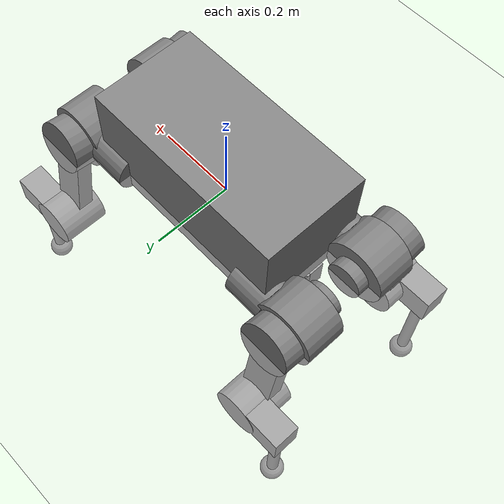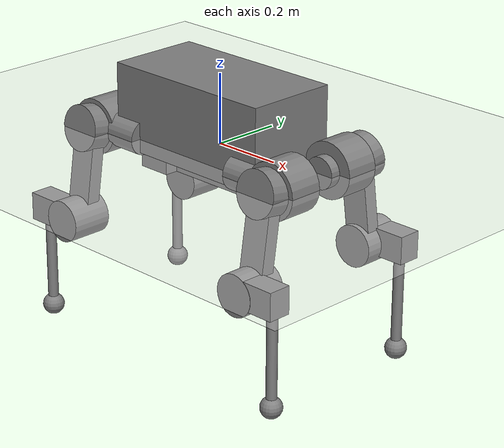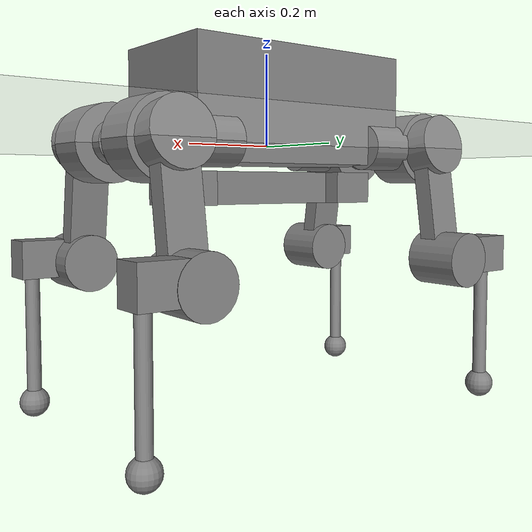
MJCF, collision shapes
<mujoco model="anymal_b">
  <compiler angle="radian" meshdir="assets" texturedir="assets" autolimits="true"/>

  <option cone="pyramidal" impratio="100" timestep="0.005"/>

  <default>
    <geom solref="-1000 -80"/>
    <default class="anymal_b">
      <mesh scale="0.001 0.001 0.001"/>
      <joint type="hinge" damping="1" frictionloss="0.1" range="-3.14 3.14"/>
      <geom mass="0"/>
      <default class="visual">
        <geom type="mesh" contype="0" conaffinity="0" group="2"/>
        <default class="visual_zflip">
          <geom quat="0 0 0 1"/>
        </default>
      </default>
      <default class="collision">
        <geom group="3"/>
        <default class="haa_actuator">
          <geom type="cylinder" size="0.05 0.05" euler="0 1.57079632679 0"/>
        </default>
        <default class="belly_plate_bump">
          <geom type="box" size="0.05 0.05 0.035"/>
        </default>
        <default class="mount">
          <geom type="box" size="0.01 0.135 0.045"/>
        </default>
        <default class="protector">
          <geom type="cylinder" size="0.08 0.05"/>
        </default>
        <default class="heatfins">
          <geom type="cylinder" size="0.045 0.015"/>
        </default>
        <default class="thigh_with_fins">
          <geom type="box" size="0.04 0.02 0.125"/>
        </default>
        <default class="kfe_actuator">
          <geom type="cylinder" size="0.06 0.06"/>
        </default>
        <default class="upper_protector">
          <geom type="cylinder" size="0.066 0.06"/>
        </default>
        <default class="shank">
          <geom type="box" size="0.04 0.034 0.065" euler="0 1.57079632679 0"/>
        </default>
        <default class="adapter">
          <geom type="cylinder" size="0.015 0.14" pos="0 0 -0.14"/>
        </default>
        <default class="foot">
          <geom type="sphere" size="0.031" pos="0 0 0.02325" priority="1" solimp="0.015 1 0.031" condim="6"
            friction="0.8 0.02 0.01"/>
        </default>
      </default>
    </default>
    <motor ctrllimited="true" ctrlrange="-40.0 40.0"/>
  </default>

  <asset>
    <texture type="skybox" builtin="gradient" rgb1=".3 .5 .7" rgb2="0 0 0" width="32" height="512"/>

    <texture name="texplane" type="2d" builtin="checker" rgb1="0.5 0.6 0.7" rgb2="0.2 0.3 0.4" width="100" height="100"/>
    <material name="MatPlane" reflectance="0.5" texture="texplane" texrepeat="1 1" texuniform="true"></material>

    <texture name="grid" type="2d" builtin="checker" rgb1="0.5 0.6 0.7" rgb2="0.2 0.3 0.4" width="512" height="512"/>
    <material name="grid" reflectance="0.5" texture="grid" texrepeat="1 1" texuniform="true"></material>

    <material name="light_gray" rgba="0.8 0.8 0.8 1"/>
    <material name="dark_gray" rgba="0.64 0.64 0.64 1"/>
    <material name="alu_eloxiert" rgba="0.1139 0.1139 0.1139 1"/>
    <material name="any_blau" rgba="0.2399 0.3499 0.5899 1"/>
    <texture name="base_uv_texture" type="2d" file="base_uv_texture.png"/>
    <material name="carbon_fibre_logo" texture="base_uv_texture" specular="1" shininess="1"/>
    <material name="rot_emcy" rgba="0.2611 0.09645 0.0735 1"/>
    <material name="yellow_emcy" rgba="0.5987 0.4607 0.2442 1"/>
    <material name="copper" rgba="0.8 0.4673 0.284 1"/>
    <material name="foam_dark" rgba="0.1 0.1 0.1 1"/>
    <texture name="carbon_uv_texture" type="2d" file="carbon_uv_texture.png"/>
    <material name="carbon_fibre" texture="carbon_uv_texture" specular="1" shininess="1"/>

    <mesh class="anymal_b" file="anymal_base_0.obj"/>
    <mesh class="anymal_b" file="anymal_base_1.obj"/>
    <mesh class="anymal_b" file="anymal_base_2.obj"/>
    <mesh class="anymal_b" file="anymal_base_3.obj"/>
    <mesh class="anymal_b" file="anymal_base_4.obj"/>
    <mesh class="anymal_b" file="anymal_base_5.obj"/>
    <mesh class="anymal_b" file="anymal_base_6.obj"/>
    <mesh class="anymal_b" file="anymal_base_7.obj"/>
    <mesh class="anymal_b" file="anymal_hip_l_0.obj"/>
    <mesh class="anymal_b" file="anymal_hip_l_1.obj"/>
    <mesh class="anymal_b" file="anymal_hip_l_2.obj"/>
    <mesh class="anymal_b" file="anymal_hip_l_3.obj"/>
    <mesh class="anymal_b" file="anymal_hip_l_4.obj"/>
    <mesh class="anymal_b" file="anymal_hip_l_5.obj"/>
    <mesh class="anymal_b" file="anymal_hip_l_6.obj"/>
    <mesh class="anymal_b" file="anymal_thigh_l_0.obj"/>
    <mesh class="anymal_b" file="anymal_thigh_l_1.obj"/>
    <mesh class="anymal_b" file="anymal_thigh_l_2.obj"/>
    <mesh class="anymal_b" file="anymal_thigh_l_3.obj"/>
    <mesh class="anymal_b" file="anymal_thigh_l_4.obj"/>
    <mesh class="anymal_b" file="anymal_thigh_l_5.obj"/>
    <mesh class="anymal_b" file="anymal_shank_l_0.obj"/>
    <mesh class="anymal_b" file="anymal_shank_l_1.obj"/>
    <mesh class="anymal_b" file="anymal_shank_l_2.obj"/>
    <mesh class="anymal_b" file="anymal_shank_l_3.obj"/>
    <mesh class="anymal_b" file="anymal_hip_r_0.obj"/>
    <mesh class="anymal_b" file="anymal_hip_r_1.obj"/>
    <mesh class="anymal_b" file="anymal_hip_r_2.obj"/>
    <mesh class="anymal_b" file="anymal_hip_r_3.obj"/>
    <mesh class="anymal_b" file="anymal_hip_r_4.obj"/>
    <mesh class="anymal_b" file="anymal_hip_r_5.obj"/>
    <mesh class="anymal_b" file="anymal_hip_r_6.obj"/>
    <mesh class="anymal_b" file="anymal_thigh_r_0.obj"/>
    <mesh class="anymal_b" file="anymal_thigh_r_1.obj"/>
    <mesh class="anymal_b" file="anymal_thigh_r_2.obj"/>
    <mesh class="anymal_b" file="anymal_thigh_r_3.obj"/>
    <mesh class="anymal_b" file="anymal_thigh_r_4.obj"/>
    <mesh class="anymal_b" file="anymal_thigh_r_5.obj"/>
    <mesh class="anymal_b" file="anymal_shank_r_0.obj"/>
    <mesh class="anymal_b" file="anymal_shank_r_1.obj"/>
    <mesh class="anymal_b" file="anymal_shank_r_2.obj"/>
    <mesh class="anymal_b" file="anymal_shank_r_3.obj"/>
    <mesh class="anymal_b" file="anymal_foot_0.obj"/>
    <mesh class="anymal_b" file="anymal_foot_1.obj"/>
    <mesh class="anymal_b" file="anymal_foot_2.obj"/>
    <mesh class="anymal_b" file="anymal_foot_3.obj"/>
  </asset>

  <worldbody>
    <geom name="floor" size="0 0 .125" type="plane" material="grid" condim="3" rgba="0.9 0.9 0.9 1"/>

    <light cutoff="100" diffuse="1 1 1" dir="-0 0 -1.3" directional="true" exponent="1" pos="0 0 1.3" specular=".1 .1 .1" castshadow="false"/>
    <light name="spotlight" mode="targetbodycom" target="trunk" pos="0 0 15"/>

    <body name="trunk" pos="0 0 0" childclass="anymal_b">
      <camera name="track" mode="trackcom" pos="0 -2 0" xyaxes="1 0 0 0 0 1"/>
      <freejoint/>

      <inertial mass="19.2035" pos="0.0025 0 0.0502071" quat="0.5 0.5 0.5 0.5" diaginertia="0.639559 0.624031 0.217374"/>

      <geom class="visual" mesh="anymal_base_0" material="yellow_emcy"/>
      <geom class="visual" mesh="anymal_base_1" material="rot_emcy"/>
      <geom class="visual" mesh="anymal_base_2" material="dark_gray"/>
      <geom class="visual" mesh="anymal_base_3" material="any_blau"/>
      <geom class="visual" mesh="anymal_base_4" material="alu_eloxiert"/>
      <geom class="visual" mesh="anymal_base_5" material="carbon_fibre_logo"/>
      <geom class="visual" mesh="anymal_base_6" material="foam_dark"/>
      <geom class="visual" mesh="anymal_base_7" material="light_gray"/>
      <geom class="collision" size="0.2655 0.135 0.12" pos="0 0 0.08" type="box" name="trunk_1"/>
      <geom class="haa_actuator" pos="0.227 0.116 0"/>
      <geom class="haa_actuator" pos="0.227 -0.116 0"/>
      <geom class="haa_actuator" pos="-0.227 0.116 0"/>
      <geom class="haa_actuator" pos="-0.227 -0.116 0"/>
      <geom class="belly_plate_bump" pos="0.2155 0 -0.09" name="trunk_2"/>
      <geom class="belly_plate_bump" pos="-0.2155 0 -0.09" name="trunk_3"/>
      <geom class="collision" size="0.2655 0.01 0.035" pos="0 0 -0.09" type="box" name="trunk_4"/>

      <body name="LF_HIP" pos="0.277 0.116 0">
        <inertial mass="1.42462" pos="0.0645163 -0.0037871 -0.000152184" quat="0.996866 0.0379822 0.0252009 -0.0646548"
          diaginertia="0.00243341 0.00230249 0.00197758"/>
        <joint name="LF_HAA" axis="1 0 0"/>
        <geom class="visual" mesh="anymal_hip_l_0" material="light_gray"/>
        <geom class="visual" mesh="anymal_hip_l_1" material="copper"/>
        <geom class="visual" mesh="anymal_hip_l_2" material="foam_dark"/>
        <geom class="visual" mesh="anymal_hip_l_3" material="alu_eloxiert"/>
        <geom class="visual" mesh="anymal_hip_l_4" material="any_blau"/>
        <geom class="visual" mesh="anymal_hip_l_5" material="dark_gray"/>
        <geom class="visual" mesh="anymal_hip_l_6" material="light_gray"/>
        <geom class="protector" pos="0.0635 -0.009 0" quat="1 1 0 0"/>
        <geom class="heatfins" pos="0.0635 -0.074 0" quat="1 1 0 0"/>
        <body name="LF_THIGH" pos="0.0635 0.041 0">
          <inertial mass="1.63498" pos="-0.00389797 0.0542266 -0.214583" quat="0.74395 -0.0633414 0.0362707 0.664237"
            diaginertia="0.0122697 0.0120427 0.00228302"/>
          <joint name="LF_HFE" axis="0 1 0"/>
          <geom class="visual" material="any_blau" mesh="anymal_thigh_l_0"/>
          <geom class="visual" material="dark_gray" mesh="anymal_thigh_l_1"/>
          <geom class="visual" material="copper" mesh="anymal_thigh_l_2"/>
          <geom class="visual" material="alu_eloxiert" mesh="anymal_thigh_l_3"/>
          <geom class="visual" material="foam_dark" mesh="anymal_thigh_l_4"/>
          <geom class="visual" material="light_gray" mesh="anymal_thigh_l_5"/>
          <geom class="thigh_with_fins" pos="0 0.035 -0.125" quat="0.997373 0.0724365 0 0" name="LF_thigh"/>
          <geom class="kfe_actuator" pos="0 0.069 -0.25" quat="1 1 0 0" name="LF_kfe_act"/>
          <geom class="upper_protector" pos="0 -0.005 0" quat="0.654029 0.75647 0 0"/>
          <body name="LF_SHANK" pos="0 0.109 -0.25">
            <inertial mass="0.472163" pos="0.0696396 -0.0132494 -0.150905"
              quat="0.677954 -0.0950614 -0.0578104 0.726636" diaginertia="0.0116034 0.0110666 0.000723761"/>
            <joint name="LF_KFE" axis="0 1 0"/>
            <geom class="visual" material="foam_dark" mesh="anymal_shank_l_0"/>
            <geom class="visual" material="dark_gray" mesh="anymal_shank_l_1"/>
            <geom class="visual" material="light_gray" mesh="anymal_shank_l_2"/>
            <geom class="visual" material="light_gray" mesh="anymal_shank_l_3"/>
            <geom class="shank" pos="0.065 -0.015 0.01" quat="1 0 1 0"/>
            <geom class="visual" material="carbon_fibre" mesh="anymal_foot_0" pos="0.1 -0.02 0.032"/>
            <geom class="visual" material="foam_dark" mesh="anymal_foot_1" pos="0.1 -0.02 0.032"/>
            <geom class="visual" material="dark_gray" mesh="anymal_foot_2" pos="0.1 -0.02 0.032"/>
            <geom class="visual" material="light_gray" mesh="anymal_foot_3" pos="0.1 -0.02 0.032"/>
            <geom class="adapter" pos="0.1 -0.02 -0.160625" name="LF_calf"/>
            <geom class="foot" pos="0.1 -0.02 -0.298" name="LF_foot"/>
          </body>
        </body>
      </body>
      <body name="RF_HIP" pos="0.277 -0.116 0">
        <inertial mass="1.42462" pos="0.0645163 0.0037871 -0.000152184" quat="0.996866 -0.0379822 0.0252009 0.0646548"
          diaginertia="0.00243341 0.00230249 0.00197758"/>
        <joint name="RF_HAA" axis="1 0 0"/>
        <geom class="visual" material="light_gray" mesh="anymal_hip_r_0"/>
        <geom class="visual" material="copper" mesh="anymal_hip_r_1"/>
        <geom class="visual" material="foam_dark" mesh="anymal_hip_r_2"/>
        <geom class="visual" material="alu_eloxiert" mesh="anymal_hip_r_3"/>
        <geom class="visual" material="any_blau" mesh="anymal_hip_r_4"/>
        <geom class="visual" material="dark_gray" mesh="anymal_hip_r_5"/>
        <geom class="visual" material="light_gray" mesh="anymal_hip_r_6"/>
        <geom class="protector" pos="0.0635 0.009 0" quat="1 1 0 0"/>
        <geom class="heatfins" pos="0.0635 0.074 0" quat="1 1 0 0"/>
        <body name="RF_THIGH" pos="0.0635 -0.041 0">
          <inertial mass="1.63498" pos="-0.00389797 -0.0542266 -0.214583" quat="0.664237 0.0362707 -0.0633414 0.74395"
            diaginertia="0.0122697 0.0120427 0.00228302"/>
          <joint name="RF_HFE" axis="0 -1 0"/>
          <geom class="visual" material="any_blau" mesh="anymal_thigh_r_0"/>
          <geom class="visual" material="dark_gray" mesh="anymal_thigh_r_1"/>
          <geom class="visual" material="copper" mesh="anymal_thigh_r_2"/>
          <geom class="visual" material="alu_eloxiert" mesh="anymal_thigh_r_3"/>
          <geom class="visual" material="foam_dark" mesh="anymal_thigh_r_4"/>
          <geom class="visual" material="light_gray" mesh="anymal_thigh_r_5"/>
          <geom class="thigh_with_fins" pos="0 -0.035 -0.125" quat="0.997373 -0.0724365 0 0" name="RF_thigh"/>
          <geom class="kfe_actuator" pos="0 -0.069 -0.25" quat="1 1 0 0" name="RF_kfe_act"/>
          <geom class="upper_protector" pos="0 0.005 0" quat="0.654029 -0.75647 0 0"/>
          <body name="RF_SHANK" pos="0 -0.109 -0.25">
            <inertial mass="0.472163" pos="0.0696396 0.0132494 -0.150905" quat="0.726636 -0.0578104 -0.0950614 0.677954"
              diaginertia="0.0116034 0.0110666 0.000723761"/>
            <joint name="RF_KFE" axis="0 -1 0"/>
            <geom class="visual" material="foam_dark" mesh="anymal_shank_r_0"/>
            <geom class="visual" material="dark_gray" mesh="anymal_shank_r_1"/>
            <geom class="visual" material="light_gray" mesh="anymal_shank_r_2"/>
            <geom class="visual" material="light_gray" mesh="anymal_shank_r_3"/>
            <geom class="shank" pos="0.065 0.015 0.01" quat="1 0 1 0"/>
            <geom class="visual" material="carbon_fibre" mesh="anymal_foot_0" pos="0.1 0.02 0.032"/>
            <geom class="visual" material="foam_dark" mesh="anymal_foot_1" pos="0.1 0.02 0.032"/>
            <geom class="visual" material="dark_gray" mesh="anymal_foot_2" pos="0.1 0.02 0.032"/>
            <geom class="visual" material="light_gray" mesh="anymal_foot_3" pos="0.1 0.02 0.032"/>
            <geom class="adapter" pos="0.1 0.02 -0.160625" name="RF_calf"/>
            <geom class="foot" pos="0.1 0.02 -0.298" name="RF_foot"/>
          </body>
        </body>
      </body>
      <body name="LH_HIP" pos="-0.277 0.116 0">
        <inertial mass="1.42462" pos="-0.0645163 -0.0037871 -0.000152184" quat="0.996866 0.0379822 -0.0252009 0.0646548"
          diaginertia="0.00243341 0.00230249 0.00197758"/>
        <joint name="LH_HAA" axis="-1 0 0"/>
        <geom class="visual_zflip" material="light_gray" mesh="anymal_hip_r_0"/>
        <geom class="visual_zflip" material="copper" mesh="anymal_hip_r_1"/>
        <geom class="visual_zflip" material="foam_dark" mesh="anymal_hip_r_2"/>
        <geom class="visual_zflip" material="alu_eloxiert" mesh="anymal_hip_r_3"/>
        <geom class="visual_zflip" material="any_blau" mesh="anymal_hip_r_4"/>
        <geom class="visual_zflip" material="dark_gray" mesh="anymal_hip_r_5"/>
        <geom class="visual_zflip" material="light_gray" mesh="anymal_hip_r_6"/>
        <geom class="protector" pos="-0.0635 -0.009 0" quat="1 -1 0 0"/>
        <geom class="heatfins" pos="-0.0635 -0.074 0" quat="1 -1 0 0"/>
        <body name="LH_THIGH" pos="-0.0635 0.041 0">
          <inertial mass="1.63498" pos="0.00389797 0.0542266 -0.214583" quat="0.664237 -0.0362707 0.0633414 0.74395"
            diaginertia="0.0122697 0.0120427 0.00228302"/>
          <joint name="LH_HFE" axis="0 1 0"/>
          <geom class="visual_zflip" material="any_blau" mesh="anymal_thigh_r_0"/>
          <geom class="visual_zflip" material="dark_gray" mesh="anymal_thigh_r_1"/>
          <geom class="visual_zflip" material="copper" mesh="anymal_thigh_r_2"/>
          <geom class="visual_zflip" material="alu_eloxiert" mesh="anymal_thigh_r_3"/>
          <geom class="visual_zflip" material="foam_dark" mesh="anymal_thigh_r_4"/>
          <geom class="visual_zflip" material="light_gray" mesh="anymal_thigh_r_5"/>
          <geom class="thigh_with_fins" pos="0 0.035 -0.125" quat="0.997373 0.0724365 0 0" name="LH_thigh"/>
          <geom class="kfe_actuator" pos="0 0.069 -0.25" quat="1 1 0 0" name="LH_kfe_act"/>
          <geom class="upper_protector" pos="0 -0.005 0" quat="0.654029 0.75647 0 0"/>
          <body name="LH_SHANK" pos="0 0.109 -0.25">
            <inertial mass="0.472163" pos="-0.0696396 -0.0132494 -0.150905" quat="0.726636 0.0578104 0.0950615 0.677954"
              diaginertia="0.0116034 0.0110666 0.000723761"/>
            <joint name="LH_KFE" axis="0 1 0"/>
            <geom class="visual_zflip" material="foam_dark" mesh="anymal_shank_r_0"/>
            <geom class="visual_zflip" material="dark_gray" mesh="anymal_shank_r_1"/>
            <geom class="visual_zflip" material="light_gray" mesh="anymal_shank_r_2"/>
            <geom class="visual_zflip" material="light_gray" mesh="anymal_shank_r_3"/>
            <geom class="shank" pos="-0.065 -0.015 0.01" quat="1 0 1 0"/>
            <geom class="visual_zflip" material="carbon_fibre" mesh="anymal_foot_0" pos="-0.1 -0.02 0.032"/>
            <geom class="visual_zflip" material="foam_dark" mesh="anymal_foot_1" pos="-0.1 -0.02 0.032"/>
            <geom class="visual_zflip" material="dark_gray" mesh="anymal_foot_2" pos="-0.1 -0.02 0.032"/>
            <geom class="visual_zflip" material="light_gray" mesh="anymal_foot_3" pos="-0.1 -0.02 0.032"/>
            <geom class="adapter" pos="-0.1 -0.02 -0.160625" name="LH_calf"/>
            <geom class="foot" pos="-0.1 -0.02 -0.298" name="LH_foot"/>
          </body>
        </body>
      </body>
      <body name="RH_HIP" pos="-0.277 -0.116 0">
        <inertial mass="1.42462" pos="-0.0645163 0.0037871 -0.000152184"
          quat="0.996866 -0.0379822 -0.0252009 -0.0646548" diaginertia="0.00243341 0.00230249 0.00197758"/>
        <joint name="RH_HAA" axis="-1 0 0"/>
        <geom class="visual_zflip" mesh="anymal_hip_l_0" material="light_gray"/>
        <geom class="visual_zflip" mesh="anymal_hip_l_1" material="copper"/>
        <geom class="visual_zflip" mesh="anymal_hip_l_2" material="foam_dark"/>
        <geom class="visual_zflip" mesh="anymal_hip_l_3" material="alu_eloxiert"/>
        <geom class="visual_zflip" mesh="anymal_hip_l_4" material="any_blau"/>
        <geom class="visual_zflip" mesh="anymal_hip_l_5" material="dark_gray"/>
        <geom class="visual_zflip" mesh="anymal_hip_l_6" material="light_gray"/>
        <geom class="protector" pos="-0.0635 0.009 0" quat="1 -1 0 0"/>
        <geom class="heatfins" pos="-0.0635 0.074 0" quat="1 -1 0 0"/>
        <body name="RH_THIGH" pos="-0.0635 -0.041 0">
          <inertial mass="1.63498" pos="0.00389797 -0.0542266 -0.214583" quat="0.74395 0.0633414 -0.0362707 0.664237"
            diaginertia="0.0122697 0.0120427 0.00228302"/>
          <joint name="RH_HFE" axis="0 -1 0"/>
          <geom class="visual_zflip" material="any_blau" mesh="anymal_thigh_l_0"/>
          <geom class="visual_zflip" material="dark_gray" mesh="anymal_thigh_l_1"/>
          <geom class="visual_zflip" material="copper" mesh="anymal_thigh_l_2"/>
          <geom class="visual_zflip" material="alu_eloxiert" mesh="anymal_thigh_l_3"/>
          <geom class="visual_zflip" material="foam_dark" mesh="anymal_thigh_l_4"/>
          <geom class="visual_zflip" material="light_gray" mesh="anymal_thigh_l_5"/>
          <geom class="thigh_with_fins" pos="0 -0.035 -0.125" quat="0.997373 -0.0724365 0 0" name="RH_thigh"/>
          <geom class="kfe_actuator" pos="0 -0.069 -0.25" quat="1 1 0 0" name="RH_kfe_act"/>
          <geom class="upper_protector" pos="0 0.005 0" quat="0.654029 -0.75647 0 0"/>
          <body name="RH_SHANK" pos="0 -0.109 -0.25">
            <inertial mass="0.472163" pos="-0.0696396 0.0132494 -0.150905" quat="0.677954 0.0950614 0.0578104 0.726636"
              diaginertia="0.0116034 0.0110666 0.000723761"/>
            <joint name="RH_KFE" axis="0 -1 0"/>
            <geom class="visual_zflip" material="foam_dark" mesh="anymal_shank_l_0"/>
            <geom class="visual_zflip" material="dark_gray" mesh="anymal_shank_l_1"/>
            <geom class="visual_zflip" material="light_gray" mesh="anymal_shank_l_2"/>
            <geom class="visual_zflip" material="light_gray" mesh="anymal_shank_l_3"/>
            <geom class="shank" pos="-0.065 0.015 0.01" quat="1 0 1 0"/>
            <geom class="visual_zflip" material="carbon_fibre" mesh="anymal_foot_0" pos="-0.1 0.02 0.032"/>
            <geom class="visual_zflip" material="foam_dark" mesh="anymal_foot_1" pos="-0.1 0.02 0.032"/>
            <geom class="visual_zflip" material="dark_gray" mesh="anymal_foot_2" pos="-0.1 0.02 0.032"/>
            <geom class="visual_zflip" material="light_gray" mesh="anymal_foot_3" pos="-0.1 0.02 0.032"/>
            <geom class="adapter" pos="-0.1 0.02 -0.160625" name="RH_calf"/>
            <geom class="foot" pos="-0.1 0.02 -0.298" name="RH_foot"/>
          </body>
        </body>
      </body>
    </body>
  </worldbody>

  <contact>
    <exclude body1="trunk" body2="LF_THIGH"/>
    <exclude body1="trunk" body2="RF_THIGH"/>
    <exclude body1="trunk" body2="LH_THIGH"/>
    <exclude body1="trunk" body2="RH_THIGH"/>
  </contact>

  <actuator>
    <motor joint="LF_HAA" name="LF_HAA" />
    <motor joint="LF_HFE" name="LF_HFE"/>
    <motor joint="LF_KFE" name="LF_KFE"/>
    <motor joint="RF_HAA" name="RF_HAA"/>
    <motor joint="RF_HFE" name="RF_HFE"/>
    <motor joint="RF_KFE" name="RF_KFE"/>
    <motor joint="LH_HAA" name="LH_HAA"/>
    <motor joint="LH_HFE" name="LH_HFE"/>
    <motor joint="LH_KFE" name="LH_KFE"/>
    <motor joint="RH_HAA" name="RH_HAA"/>
    <motor joint="RH_HFE" name="RH_HFE"/>
    <motor joint="RH_KFE" name="RH_KFE"/>
  </actuator>

  <keyframe>
    <key name="home" qpos="0 0 0.5 1 0 0 0 0.0 0.4 -0.8 0.0 -0.4 0.8 0.0 -0.4 0.8 0.0 0.4 -0.8"/>
  </keyframe>
</mujoco>
